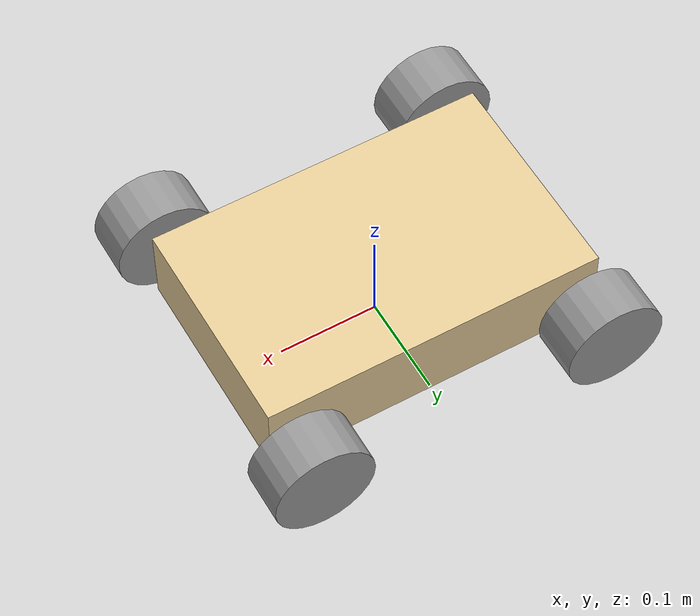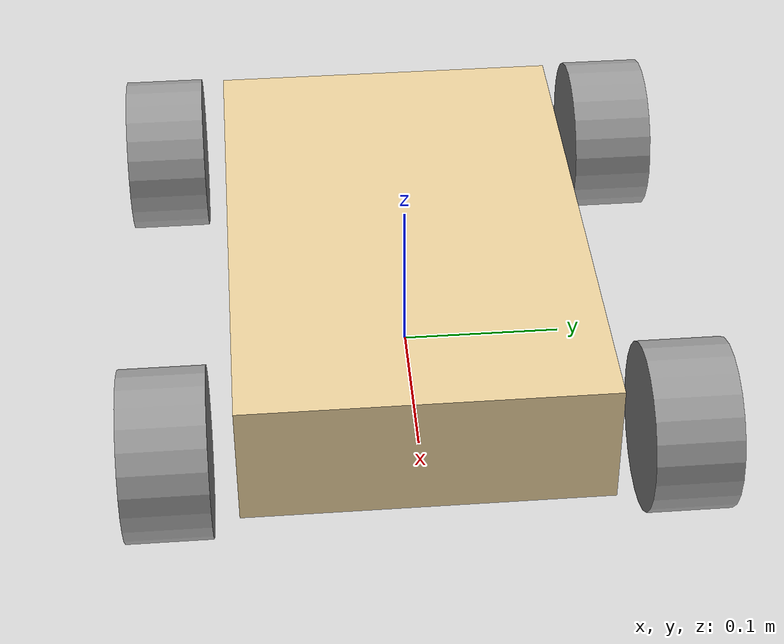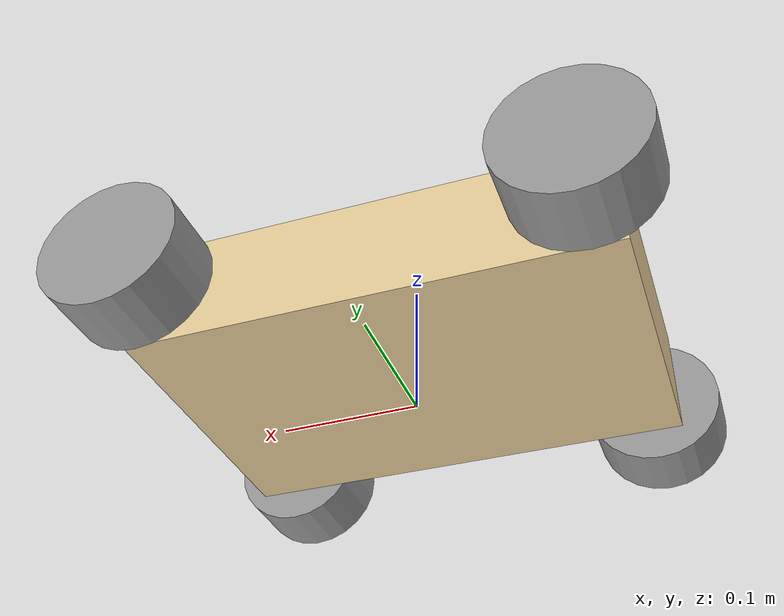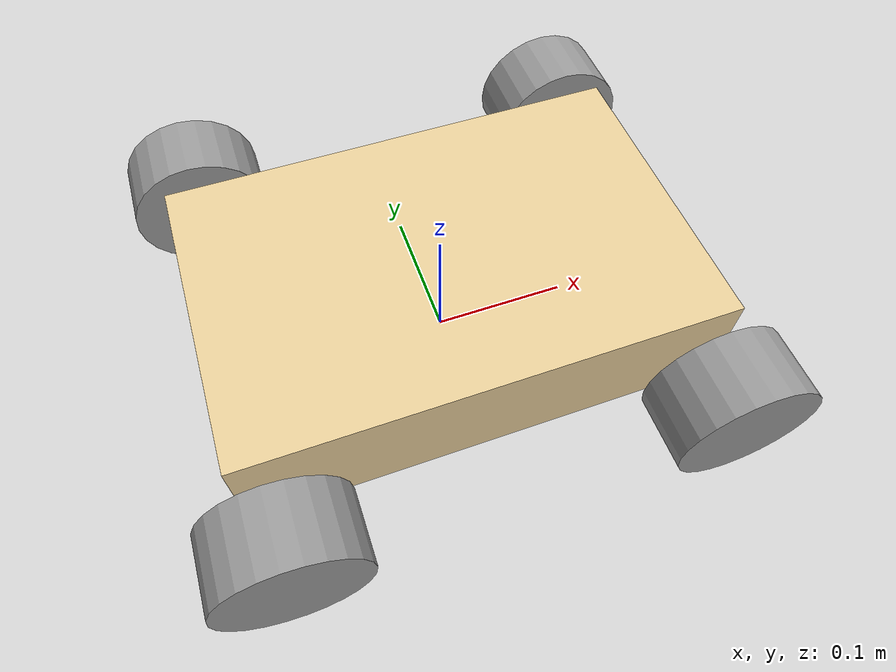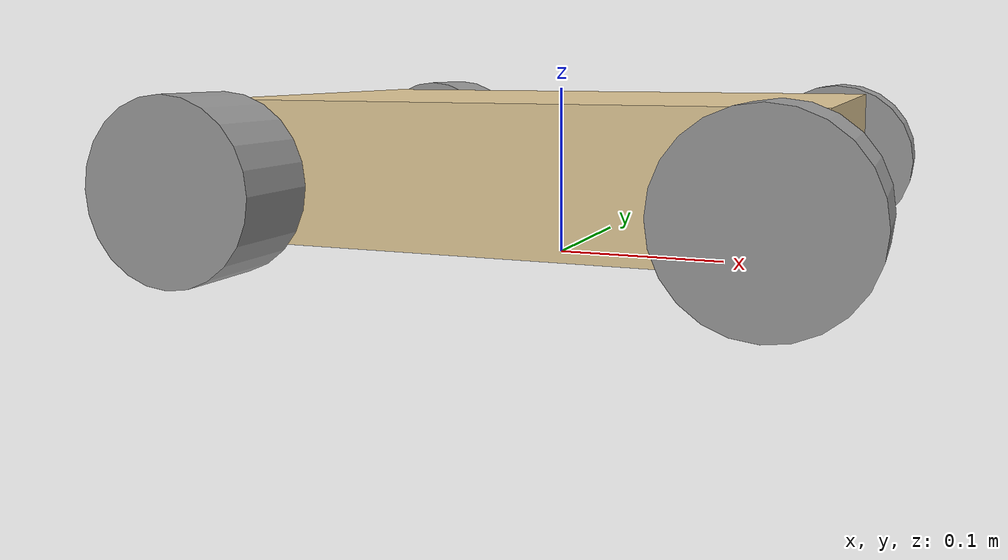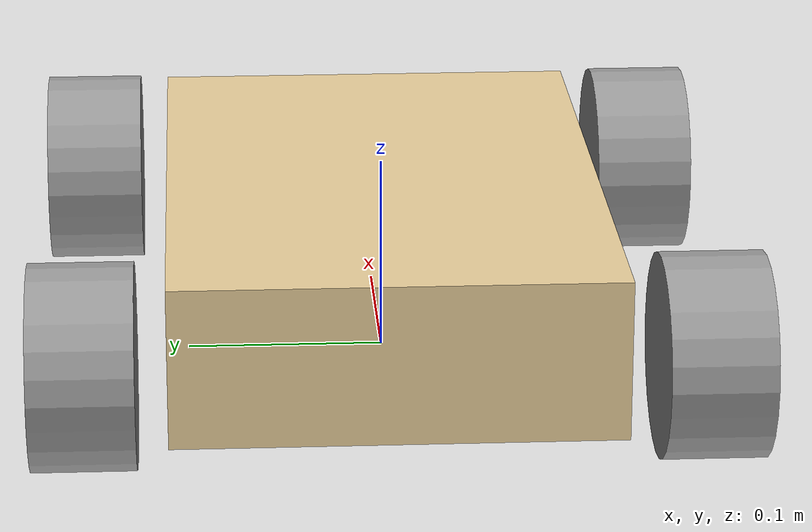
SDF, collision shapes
<?xml version="1.0" ?>
<!-- |    This document was autogenerated by xacro from models/xgc2_mecanum_ugv/model.sdf.xacro | -->
<!-- |    EDITING THIS FILE BY HAND IS NOT RECOMMENDED                                 | -->
<sdf version="1.6">
  <model name="xgc2_mecanum_ugv">
    <static>false</static>
    <self_collide>false</self_collide>
    <allow_auto_disable>false</allow_auto_disable>
    <link name="base_footprint">
      <gravity>True</gravity>
      <self_collide>false</self_collide>
      <velocity_decay>
        <linear>0</linear>
        <angular>0</angular>
      </velocity_decay>
      <inertial>
        <pose>-0.01103 0 0.052 0 0 0</pose>
        <mass>2.844</mass>
        <inertia>
          <ixx>0.018819942</ixx>
          <iyy>0.057333716</iyy>
          <izz>0.074201740</izz>
          <ixy>0</ixy>
          <ixz>-0.000101519</ixz>
          <iyz>0</iyz>
        </inertia>
      </inertial>
      <collision name="chassis">
        <pose>0 0 0.055 0 0 0</pose>
        <geometry>
          <box>
            <size>0.34 0.22 0.08</size>
          </box>
        </geometry>
        <surface>
          <friction>
            <ode>
              <mu>0.5</mu>
              <mu2>0.5</mu2>
            </ode>
          </friction>
        </surface>
      </collision>
      <visual name="base_link">
        <pose>0 0 0.05 0 0 0</pose>
        <geometry>
          <mesh>
            <uri>model://mecanum_description/meshes/lod10k/nexus_base_link.dae</uri>
            <scale>1 1 1</scale>
          </mesh>
        </geometry>
        <material>
          <ambient>0.9 0.8 0.6 1</ambient>
          <diffuse>0.9 0.8 0.6 1</diffuse>
        </material>
      </visual>
      <visual name="upper_left_wheel_shaft">
        <pose>0.150 0.108 0.05 0 0 0</pose>
        <geometry>
          <mesh>
            <uri>model://mecanum_description/meshes/lod10k/wheel_shaft.dae</uri>
            <scale>1 1 1</scale>
          </mesh>
        </geometry>
        <material>
          <ambient>0.15 0.15 0.15 1</ambient>
          <diffuse>0.15 0.15 0.15 1</diffuse>
        </material>
      </visual>
      <visual name="lower_left_wheel_shaft">
        <pose>-0.150 0.108 0.05 0 0 0</pose>
        <geometry>
          <mesh>
            <uri>model://mecanum_description/meshes/lod10k/wheel_shaft.dae</uri>
            <scale>1 1 1</scale>
          </mesh>
        </geometry>
        <material>
          <ambient>0.15 0.15 0.15 1</ambient>
          <diffuse>0.15 0.15 0.15 1</diffuse>
        </material>
      </visual>
      <visual name="upper_right_wheel_shaft">
        <pose>0.150 -0.108 0.05 3.141592653589793 0 0</pose>
        <geometry>
          <mesh>
            <uri>model://mecanum_description/meshes/lod10k/wheel_shaft.dae</uri>
            <scale>1 1 1</scale>
          </mesh>
        </geometry>
        <material>
          <ambient>0.15 0.15 0.15 1</ambient>
          <diffuse>0.15 0.15 0.15 1</diffuse>
        </material>
      </visual>
      <visual name="lower_right_wheel_shaft">
        <pose>-0.150 -0.108 0.05 3.141592653589793 0 0</pose>
        <geometry>
          <mesh>
            <uri>model://mecanum_description/meshes/lod10k/wheel_shaft.dae</uri>
            <scale>1 1 1</scale>
          </mesh>
        </geometry>
        <material>
          <ambient>0.15 0.15 0.15 1</ambient>
          <diffuse>0.15 0.15 0.15 1</diffuse>
        </material>
      </visual>
      <visual name="front_sensor">
        <pose>0.205 0 0.06 1.5707963267948966 0 0</pose>
        <geometry>
          <mesh>
            <uri>model://mecanum_description/meshes/lod10k/urm04.dae</uri>
            <scale>1 1 1</scale>
          </mesh>
        </geometry>
        <material>
          <ambient>0.15 0.15 0.15 1</ambient>
          <diffuse>0.15 0.15 0.15 1</diffuse>
        </material>
      </visual>
      <visual name="left_sensor">
        <pose>0 0.108 0.06 1.5707963267948966 0 1.5707963267948966</pose>
        <geometry>
          <mesh>
            <uri>model://mecanum_description/meshes/lod10k/urm04.dae</uri>
            <scale>1 1 1</scale>
          </mesh>
        </geometry>
        <material>
          <ambient>0.15 0.15 0.15 1</ambient>
          <diffuse>0.15 0.15 0.15 1</diffuse>
        </material>
      </visual>
      <visual name="right_sensor">
        <pose>0 -0.108 0.06 1.5707963267948966 0 -1.5707963267948966</pose>
        <geometry>
          <mesh>
            <uri>model://mecanum_description/meshes/lod10k/urm04.dae</uri>
            <scale>1 1 1</scale>
          </mesh>
        </geometry>
        <material>
          <ambient>0.15 0.15 0.15 1</ambient>
          <diffuse>0.15 0.15 0.15 1</diffuse>
        </material>
      </visual>
      <visual name="rear_sensor">
        <pose>-0.201 0 0.06 1.5707963267948966 0 3.141592653589793</pose>
        <geometry>
          <mesh>
            <uri>model://mecanum_description/meshes/lod10k/urm04.dae</uri>
            <scale>1 1 1</scale>
          </mesh>
        </geometry>
        <material>
          <ambient>0.15 0.15 0.15 1</ambient>
          <diffuse>0.15 0.15 0.15 1</diffuse>
        </material>
      </visual>
      <visual name="stereo_camera">
        <pose>0.205 0 0.06 0 0 0</pose>
        <geometry>
          <box>
            <size>0.02 0.08 0.01</size>
          </box>
        </geometry>
        <material>
          <ambient>0.15 0.15 0.15 1</ambient>
          <diffuse>0.15 0.15 0.15 1</diffuse>
        </material>
      </visual>
    </link>
    <link name="upper_left_wheel">
      <pose>0.15 0.15 0.05 0 0 0</pose>
      <gravity>true</gravity>
      <inertial>
        <mass>0.3844</mass>
        <inertia>
          <ixx>0.000324824</ixx>
          <iyy>0.000480000</iyy>
          <izz>0.000324824</izz>
          <ixy>0</ixy>
          <ixz>0</ixz>
          <iyz>0</iyz>
        </inertia>
      </inertial>
      <visual name="visual">
        <pose>0 0 0 0 0 0</pose>
        <geometry>
          <mesh>
            <uri>model://mecanum_description/meshes/lod10k/mecanum_wheel_left.dae</uri>
            <scale>1 1 1</scale>
          </mesh>
        </geometry>
        <material>
          <ambient>0.6 0.6 0.6 1</ambient>
          <diffuse>0.6 0.6 0.6 1</diffuse>
        </material>
      </visual>
      <collision name="contact">
        <pose>0 0 0 1.5707963267948966 0 0</pose>
        <geometry>
          <cylinder>
            <radius>0.05</radius>
            <length>0.0505</length>
          </cylinder>
        </geometry>
        <surface>
          <!-- Horizontal Mecanum traction is computed by the model plugin;
               this collision supplies vertical contact and wheel geometry. -->
          <friction>
            <ode>
              <mu>0</mu>
              <mu2>0</mu2>
            </ode>
          </friction>
          <contact>
            <ode>
              <kp>1000000</kp>
              <kd>10</kd>
              <max_vel>0.1</max_vel>
              <min_depth>0.001</min_depth>
            </ode>
          </contact>
        </surface>
      </collision>
    </link>
    <joint name="upper_left_wheel_joint" type="revolute">
      <!-- Joint poses are expressed in the child-link frame by default. -->
      <pose>0 0 0 0 0 0</pose>
      <parent>base_footprint</parent>
      <child>upper_left_wheel</child>
      <axis>
        <xyz>0 1 0</xyz>
        <limit>
          <lower>-1e+16</lower>
          <upper>1e+16</upper>
          <effort>2.0</effort>
          <velocity>80.0</velocity>
        </limit>
        <dynamics>
          <damping>0.002</damping>
          <friction>0</friction>
        </dynamics>
      </axis>
    </joint>
    <link name="upper_right_wheel">
      <pose>0.15 -0.15 0.05 0 0 0</pose>
      <gravity>true</gravity>
      <inertial>
        <mass>0.3844</mass>
        <inertia>
          <ixx>0.000324824</ixx>
          <iyy>0.000480000</iyy>
          <izz>0.000324824</izz>
          <ixy>0</ixy>
          <ixz>0</ixz>
          <iyz>0</iyz>
        </inertia>
      </inertial>
      <visual name="visual">
        <pose>0 0 0 3.141592653589793 0 0</pose>
        <geometry>
          <mesh>
            <uri>model://mecanum_description/meshes/lod10k/mecanum_wheel_right.dae</uri>
            <scale>1 1 1</scale>
          </mesh>
        </geometry>
        <material>
          <ambient>0.6 0.6 0.6 1</ambient>
          <diffuse>0.6 0.6 0.6 1</diffuse>
        </material>
      </visual>
      <collision name="contact">
        <pose>0 0 0 1.5707963267948966 0 0</pose>
        <geometry>
          <cylinder>
            <radius>0.05</radius>
            <length>0.0505</length>
          </cylinder>
        </geometry>
        <surface>
          <!-- Horizontal Mecanum traction is computed by the model plugin;
               this collision supplies vertical contact and wheel geometry. -->
          <friction>
            <ode>
              <mu>0</mu>
              <mu2>0</mu2>
            </ode>
          </friction>
          <contact>
            <ode>
              <kp>1000000</kp>
              <kd>10</kd>
              <max_vel>0.1</max_vel>
              <min_depth>0.001</min_depth>
            </ode>
          </contact>
        </surface>
      </collision>
    </link>
    <joint name="upper_right_wheel_joint" type="revolute">
      <!-- Joint poses are expressed in the child-link frame by default. -->
      <pose>0 0 0 0 0 0</pose>
      <parent>base_footprint</parent>
      <child>upper_right_wheel</child>
      <axis>
        <xyz>0 -1 0</xyz>
        <limit>
          <lower>-1e+16</lower>
          <upper>1e+16</upper>
          <effort>2.0</effort>
          <velocity>80.0</velocity>
        </limit>
        <dynamics>
          <damping>0.002</damping>
          <friction>0</friction>
        </dynamics>
      </axis>
    </joint>
    <link name="lower_left_wheel">
      <pose>-0.15 0.15 0.05 0 0 0</pose>
      <gravity>true</gravity>
      <inertial>
        <mass>0.3844</mass>
        <inertia>
          <ixx>0.000324824</ixx>
          <iyy>0.000480000</iyy>
          <izz>0.000324824</izz>
          <ixy>0</ixy>
          <ixz>0</ixz>
          <iyz>0</iyz>
        </inertia>
      </inertial>
      <visual name="visual">
        <pose>0 0 0 0 0 0</pose>
        <geometry>
          <mesh>
            <uri>model://mecanum_description/meshes/lod10k/mecanum_wheel_right.dae</uri>
            <scale>1 1 1</scale>
          </mesh>
        </geometry>
        <material>
          <ambient>0.6 0.6 0.6 1</ambient>
          <diffuse>0.6 0.6 0.6 1</diffuse>
        </material>
      </visual>
      <collision name="contact">
        <pose>0 0 0 1.5707963267948966 0 0</pose>
        <geometry>
          <cylinder>
            <radius>0.05</radius>
            <length>0.0505</length>
          </cylinder>
        </geometry>
        <surface>
          <!-- Horizontal Mecanum traction is computed by the model plugin;
               this collision supplies vertical contact and wheel geometry. -->
          <friction>
            <ode>
              <mu>0</mu>
              <mu2>0</mu2>
            </ode>
          </friction>
          <contact>
            <ode>
              <kp>1000000</kp>
              <kd>10</kd>
              <max_vel>0.1</max_vel>
              <min_depth>0.001</min_depth>
            </ode>
          </contact>
        </surface>
      </collision>
    </link>
    <joint name="lower_left_wheel_joint" type="revolute">
      <!-- Joint poses are expressed in the child-link frame by default. -->
      <pose>0 0 0 0 0 0</pose>
      <parent>base_footprint</parent>
      <child>lower_left_wheel</child>
      <axis>
        <xyz>0 1 0</xyz>
        <limit>
          <lower>-1e+16</lower>
          <upper>1e+16</upper>
          <effort>2.0</effort>
          <velocity>80.0</velocity>
        </limit>
        <dynamics>
          <damping>0.002</damping>
          <friction>0</friction>
        </dynamics>
      </axis>
    </joint>
    <link name="lower_right_wheel">
      <pose>-0.15 -0.15 0.05 0 0 0</pose>
      <gravity>true</gravity>
      <inertial>
        <mass>0.3844</mass>
        <inertia>
          <ixx>0.000324824</ixx>
          <iyy>0.000480000</iyy>
          <izz>0.000324824</izz>
          <ixy>0</ixy>
          <ixz>0</ixz>
          <iyz>0</iyz>
        </inertia>
      </inertial>
      <visual name="visual">
        <pose>0 0 0 3.141592653589793 0 0</pose>
        <geometry>
          <mesh>
            <uri>model://mecanum_description/meshes/lod10k/mecanum_wheel_left.dae</uri>
            <scale>1 1 1</scale>
          </mesh>
        </geometry>
        <material>
          <ambient>0.6 0.6 0.6 1</ambient>
          <diffuse>0.6 0.6 0.6 1</diffuse>
        </material>
      </visual>
      <collision name="contact">
        <pose>0 0 0 1.5707963267948966 0 0</pose>
        <geometry>
          <cylinder>
            <radius>0.05</radius>
            <length>0.0505</length>
          </cylinder>
        </geometry>
        <surface>
          <!-- Horizontal Mecanum traction is computed by the model plugin;
               this collision supplies vertical contact and wheel geometry. -->
          <friction>
            <ode>
              <mu>0</mu>
              <mu2>0</mu2>
            </ode>
          </friction>
          <contact>
            <ode>
              <kp>1000000</kp>
              <kd>10</kd>
              <max_vel>0.1</max_vel>
              <min_depth>0.001</min_depth>
            </ode>
          </contact>
        </surface>
      </collision>
    </link>
    <joint name="lower_right_wheel_joint" type="revolute">
      <!-- Joint poses are expressed in the child-link frame by default. -->
      <pose>0 0 0 0 0 0</pose>
      <parent>base_footprint</parent>
      <child>lower_right_wheel</child>
      <axis>
        <xyz>0 -1 0</xyz>
        <limit>
          <lower>-1e+16</lower>
          <upper>1e+16</upper>
          <effort>2.0</effort>
          <velocity>80.0</velocity>
        </limit>
        <dynamics>
          <damping>0.002</damping>
          <friction>0</friction>
        </dynamics>
      </axis>
    </joint>
    <plugin filename="libgazebo_sim_mecanum_contract.so" name="mecanum_contract">
      <chassisRobotId>ugv1</chassisRobotId>
      <robotNamespace>ugv1</robotNamespace>
      <driveModel>high_fidelity</driveModel>
      <commandTopic>cmd_vel</commandTopic>
      <poseTopic>simulation/ground_truth/pose</poseTopic>
      <twistTopic>simulation/ground_truth/twist</twistTopic>
      <imuTopic>imu</imuTopic>
      <jointStatesTopic>joint_states</jointStatesTopic>
      <powerVoltageTopic>PowerVoltage</powerVoltageTopic>
      <powerVoltagePublishRate>1</powerVoltagePublishRate>
      <batteryVoltage>12.348</batteryVoltage>
      <statePublishRate>100</statePublishRate>
      <visualPublishRate>20</visualPublishRate>
      <imuPublishRate>20</imuPublishRate>
      <maxFrontVelocity>1.5</maxFrontVelocity>
      <maxLeftVelocity>1.5</maxLeftVelocity>
      <maxYawVelocity>1.570796326794897</maxYawVelocity>
      <linearScale>1</linearScale>
      <angularScale>1</angularScale>
      <wheelRadius>0.05</wheelRadius>
      <wheelbaseSum>0.30</wheelbaseSum>
      <wheelPidP>0.35</wheelPidP>
      <wheelTorqueLimit>1.2</wheelTorqueLimit>
      <tractionGain>18.0</tractionGain>
      <frictionCoefficient>0.85</frictionCoefficient>
      <linearDrag>0.10</linearDrag>
      <angularDrag>0.02</angularDrag>
      <yawTractionScale>0.45</yawTractionScale>
      <imuYawBase>0.7853981633974483</imuYawBase>
      <useImuOrientation>false</useImuOrientation>
      <mapFrame>map</mapFrame>
      <imuFrame>world</imuFrame>
      <baseFrame>base_footprint</baseFrame>
    </plugin>
  </model>
</sdf>
